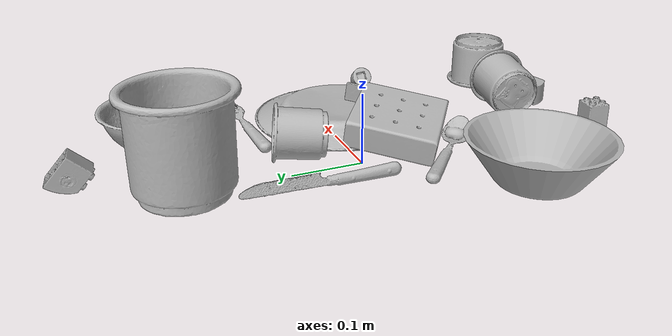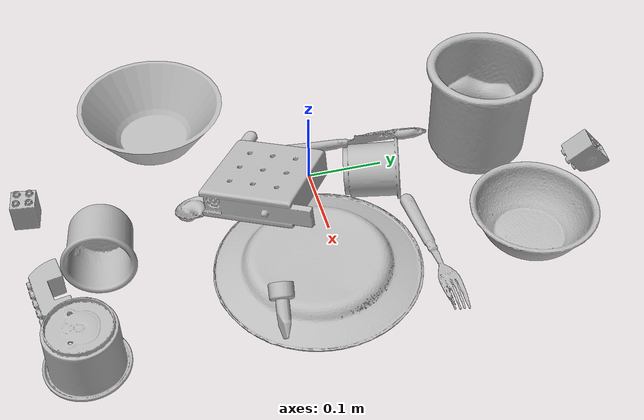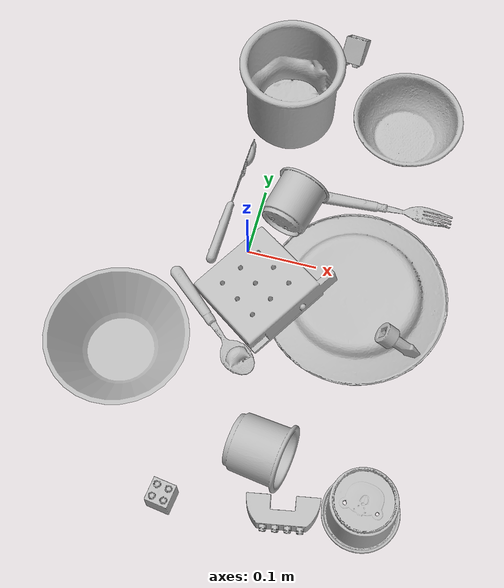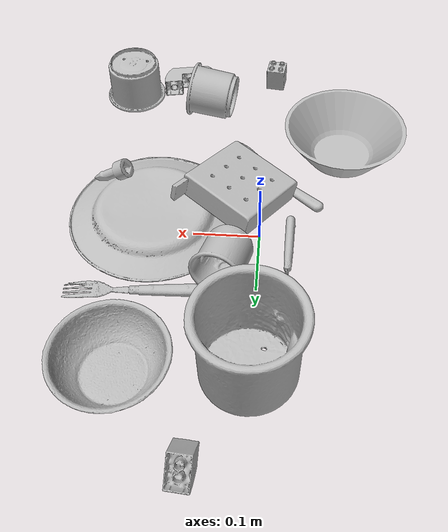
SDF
<sdf version="1.4">
  <world name="default">
    <light name="light1" type="point">
      <pose>0 0 1 0 0 0</pose>
      <diffuse>3 3 3 1</diffuse>
      <specular>3 3 3 1</specular>
    </light>
    <light name="light2" type="point">
      <pose>0 0.5 2 0 0 0</pose>
      <diffuse>1 1 1 1</diffuse>
      <specular>1 1 1 1</specular>
    </light>
    <light name="light3" type="point">
      <pose>0 0.5 2 0 0 0</pose>
      <diffuse>3 3 3 1</diffuse>
      <specular>3 3 3 1</specular>
    </light>
    <scene>
      <ambient>0.7 0.7 0.7</ambient>
    </scene>
    <model name="plate1">
      <link name="link_plate1">
        <collision name="default">
          <geometry>
            <mesh>
              <uri>model://plate/collision_meshes/collision.obj</uri>
              <scale>1.0 1.0 1.0</scale>
            </mesh>
          </geometry>
          <surface>
            <friction>
              <ode>
                <mu>0.5</mu>
                <mu2>0.5</mu2>
              </ode>
            </friction>
          <contact>
        <ode>
            <max_vel>0</max_vel>
            <min_depth>0.0001</min_depth>
            <kp>1e8</kp>
        </ode>
    </contact></surface>
        </collision>
        <visual name="default">
          <geometry>
            <mesh>
              <uri>model://plate/visual_meshes/visual.dae</uri>
              <scale>1.0 1.0 1.0</scale>
            </mesh>
          </geometry>
        </visual>
        <inertial>
          <mass>0.17760059237480164</mass>
          <pose>-0.0006044625188224018 0.0002782586379908025 -0.0010561981471255422 0.0022187804018266454 -0.0032254852757079067 0.45261158451631034</pose>
          <inertia>
            <ixx>0.0008308187</ixx>
            <iyy>0.0008228725</iyy>
            <izz>0.0016249575</izz>
            <ixy>0</ixy>
            <ixz>0</ixz>
            <iyz>0</iyz>
          </inertia>
        </inertial>
      </link>
      <pose>0.16452111303806305 -0.03132164478302002 0.013927219435572624 3.1259856221602 -0.007385592271406682 2.5037530969604975</pose>
    </model>
    <model name="cup1">
      <link name="link_cup1">
        <collision name="default">
          <geometry>
            <mesh>
              <uri>model://e_cups/collision_meshes/collision.obj</uri>
              <scale>2.0 2.0 2.0</scale>
            </mesh>
          </geometry>
          <surface>
            <friction>
              <ode>
                <mu>0.5</mu>
                <mu2>0.5</mu2>
              </ode>
            </friction>
          <contact>
        <ode>
            <max_vel>0</max_vel>
            <min_depth>0.0001</min_depth>
            <kp>1e8</kp>
        </ode>
    </contact></surface>
        </collision>
        <visual name="default">
          <geometry>
            <mesh>
              <uri>model://e_cups/visual_meshes/visual.dae</uri>
              <scale>2.0 2.0 2.0</scale>
            </mesh>
          </geometry>
        </visual>
        <inertial>
          <mass>0.744063675403595</mass>
          <pose>0.002271148143336177 0.005759569350630045 -0.007765938527882099 0.6952380949131286 0.08767384491187986 -0.5235246841726229</pose>
          <inertia>
            <ixx>0.0026243117</ixx>
            <iyy>0.0027427815</iyy>
            <izz>0.0025091455</izz>
            <ixy>0</ixy>
            <ixz>0</ixz>
            <iyz>0</iyz>
          </inertia>
        </inertial>
      </link>
      <pose>0.0028104721568524837 0.23631134629249573 0.07120022922754288 -6.990888139079443e-06 4.362012337239114e-06 0.9962745160491979</pose>
    </model>
    <model name="silverware1">
      <link name="link_silverware1">
        <collision name="default">
          <geometry>
            <mesh>
              <uri>model://knife/collision_meshes/collision.obj</uri>
              <scale>1.0 1.0 1.0</scale>
            </mesh>
          </geometry>
          <surface>
            <friction>
              <ode>
                <mu>0.5</mu>
                <mu2>0.5</mu2>
              </ode>
            </friction>
          <contact>
        <ode>
            <max_vel>0</max_vel>
            <min_depth>0.0001</min_depth>
            <kp>1e8</kp>
        </ode>
    </contact></surface>
        </collision>
        <visual name="default">
          <geometry>
            <mesh>
              <uri>model://knife/visual_meshes/visual.dae</uri>
              <scale>1.0 1.0 1.0</scale>
            </mesh>
          </geometry>
        </visual>
        <inertial>
          <mass>0.01882243901491165</mass>
          <pose>-0.02378525212407112 0.001527512213215232 5.062019408796914e-05 0.07305335090357784 0.017248422780830937 -0.007409828138098005</pose>
          <inertia>
            <ixx>5.342572e-07</ixx>
            <iyy>7.231275e-05</iyy>
            <izz>7.248483e-05</izz>
            <ixy>0</ixy>
            <ixz>0</ixz>
            <iyz>0</iyz>
          </inertia>
        </inertial>
      </link>
      <pose>-0.04236140102148056 0.07279502600431442 0.009879295714199543 -1.4462649126747142 0.004169503201888437 1.5329021112931427</pose>
    </model>
    <model name="silverware2">
      <link name="link_silverware2">
        <collision name="default">
          <geometry>
            <mesh>
              <uri>model://fork/collision_meshes/collision.obj</uri>
              <scale>1.0 1.0 1.0</scale>
            </mesh>
          </geometry>
          <surface>
            <friction>
              <ode>
                <mu>0.5</mu>
                <mu2>0.5</mu2>
              </ode>
            </friction>
          <contact>
        <ode>
            <max_vel>0</max_vel>
            <min_depth>0.0001</min_depth>
            <kp>1e8</kp>
        </ode>
    </contact></surface>
        </collision>
        <visual name="default">
          <geometry>
            <mesh>
              <uri>model://fork/visual_meshes/visual.dae</uri>
              <scale>1.0 1.0 1.0</scale>
            </mesh>
          </geometry>
        </visual>
        <inertial>
          <mass>0.02216319739818573</mass>
          <pose>-0.029570037499070168 0.0004658822435885668 0.0003218860365450382 -0.01355085274048469 -0.010977831838055618 0.014453900749429992</pose>
          <inertia>
            <ixx>7.769453e-07</ixx>
            <iyy>5.7861733e-05</iyy>
            <izz>5.8209254e-05</izz>
            <ixy>0</ixy>
            <ixz>0</ixz>
            <iyz>0</iyz>
          </inertia>
        </inertial>
      </link>
      <pose>0.17514243721961975 0.11551462113857269 0.00781281478703022 3.0675558805328857 -0.005723215373697758 0.05723825514674186</pose>
    </model>
    <model name="silverware3">
      <link name="link_silverware3">
        <collision name="default">
          <geometry>
            <mesh>
              <uri>model://spoon/collision_meshes/collision.obj</uri>
              <scale>1.0 1.0 1.0</scale>
            </mesh>
          </geometry>
          <surface>
            <friction>
              <ode>
                <mu>0.5</mu>
                <mu2>0.5</mu2>
              </ode>
            </friction>
          <contact>
        <ode>
            <max_vel>0</max_vel>
            <min_depth>0.0001</min_depth>
            <kp>1e8</kp>
        </ode>
    </contact></surface>
        </collision>
        <visual name="default">
          <geometry>
            <mesh>
              <uri>model://spoon/visual_meshes/visual.dae</uri>
              <scale>1.0 1.0 1.0</scale>
            </mesh>
          </geometry>
        </visual>
        <inertial>
          <mass>0.0369713120162487</mass>
          <pose>-0.005526314955204725 -0.001603417214937508 -0.0007271651993505657 0.03521850370393077 -0.03906584809093457 0.006150612862082015</pose>
          <inertia>
            <ixx>2.0564048e-06</ixx>
            <iyy>0.00014067463</iyy>
            <izz>0.00014168874</izz>
            <ixy>0</ixy>
            <ixz>0</ixz>
            <iyz>0</iyz>
          </inertia>
        </inertial>
      </link>
      <pose>-0.018910512328147888 -0.118255116045475 0.00838526338338852 0.006729237300234893 0.026892991549257884 -0.7216081080333966</pose>
    </model>
    <model name="cup3">
      <link name="link_cup3">
        <collision name="default">
          <geometry>
            <mesh>
              <uri>model://h_cups/collision_meshes/collision.obj</uri>
              <scale>1.0 1.0 1.0</scale>
            </mesh>
          </geometry>
          <surface>
            <friction>
              <ode>
                <mu>0.5</mu>
                <mu2>0.5</mu2>
              </ode>
            </friction>
          <contact>
        <ode>
            <max_vel>0</max_vel>
            <min_depth>0.0001</min_depth>
            <kp>1e8</kp>
        </ode>
    </contact></surface>
        </collision>
        <visual name="default">
          <geometry>
            <mesh>
              <uri>model://h_cups/visual_meshes/visual.dae</uri>
              <scale>1.0 1.0 1.0</scale>
            </mesh>
          </geometry>
        </visual>
        <inertial>
          <mass>0.07650958746671677</mass>
          <pose>-2.7029362172470428e-05 0.0002301867789356038 -0.0018405390437692404 -0.02436239906192228 0.06545228304852578 0.1288505673262376</pose>
          <inertia>
            <ixx>9.880857e-05</ixx>
            <iyy>9.7629454e-05</iyy>
            <izz>0.0001036231</izz>
            <ixy>0</ixy>
            <ixz>0</ixz>
            <iyz>0</iyz>
          </inertia>
        </inertial>
      </link>
      <pose>0.0941319391131401 -0.28751370310783386 0.04216717928647995 1.393915852392832 0.9847153481837199 1.270597587894145</pose>
    </model>
    <model name="cup4">
      <link name="link_cup4">
        <collision name="default">
          <geometry>
            <mesh>
              <uri>model://f_cups/collision_meshes/collision.obj</uri>
              <scale>1.0 1.0 1.0</scale>
            </mesh>
          </geometry>
          <surface>
            <friction>
              <ode>
                <mu>0.5</mu>
                <mu2>0.5</mu2>
              </ode>
            </friction>
          <contact>
        <ode>
            <max_vel>0</max_vel>
            <min_depth>0.0001</min_depth>
            <kp>1e8</kp>
        </ode>
    </contact></surface>
        </collision>
        <visual name="default">
          <geometry>
            <mesh>
              <uri>model://f_cups/visual_meshes/visual.dae</uri>
              <scale>1.0 1.0 1.0</scale>
            </mesh>
          </geometry>
        </visual>
        <inertial>
          <mass>0.06643713265657425</mass>
          <pose>-0.003171468386426568 -0.0006240070797502995 -0.003655537962913513 0.7862285241405351 -0.26079358215919657 -0.18237309734404591</pose>
          <inertia>
            <ixx>6.2452695e-05</ixx>
            <iyy>6.551358e-05</iyy>
            <izz>6.820148e-05</izz>
            <ixy>0</ixy>
            <ixz>0</ixz>
            <iyz>0</iyz>
          </inertia>
        </inertial>
      </link>
      <pose>0.04692986607551575 0.07268887013196945 0.037166036665439606 1.4766542176384285 0.28734980163864854 2.8429583940200653</pose>
    </model>
    <model name="cup5">
      <link name="link_cup5">
        <collision name="default">
          <geometry>
            <mesh>
              <uri>model://j_cups/collision_meshes/collision.obj</uri>
              <scale>1.0 1.0 1.0</scale>
            </mesh>
          </geometry>
          <surface>
            <friction>
              <ode>
                <mu>0.5</mu>
                <mu2>0.5</mu2>
              </ode>
            </friction>
          <contact>
        <ode>
            <max_vel>0</max_vel>
            <min_depth>0.0001</min_depth>
            <kp>1e8</kp>
        </ode>
    </contact></surface>
        </collision>
        <visual name="default">
          <geometry>
            <mesh>
              <uri>model://j_cups/visual_meshes/visual.dae</uri>
              <scale>1.0 1.0 1.0</scale>
            </mesh>
          </geometry>
        </visual>
        <inertial>
          <mass>0.12178023159503937</mass>
          <pose>0.0006164865335449576 0.000539897009730339 -0.001347901183180511 0.03030406613159603 0.03757978252187804 0.4386981755119238</pose>
          <inertia>
            <ixx>0.0001788119</ixx>
            <iyy>0.00018067128</iyy>
            <izz>0.00020613305</izz>
            <ixy>0</ixy>
            <ixz>0</ixz>
            <iyz>0</iyz>
          </inertia>
        </inertial>
      </link>
      <pose>0.23817569017410278 -0.3250163793563843 0.037997763603925705 -3.1398532262860077 0.006370778674733322 2.8643332687110803</pose>
    </model>
    <model name="bowl1">
      <link name="link_bowl1">
        <collision name="default">
          <geometry>
            <mesh>
              <uri>model://bowl/collision_meshes/collision.obj</uri>
              <scale>1.0 1.0 1.0</scale>
            </mesh>
          </geometry>
          <surface>
            <friction>
              <ode>
                <mu>0.5</mu>
                <mu2>0.5</mu2>
              </ode>
            </friction>
          <contact>
        <ode>
            <max_vel>0</max_vel>
            <min_depth>0.0001</min_depth>
            <kp>1e8</kp>
        </ode>
    </contact></surface>
        </collision>
        <visual name="default">
          <geometry>
            <mesh>
              <uri>model://bowl/visual_meshes/visual.dae</uri>
              <scale>1.0 1.0 1.0</scale>
            </mesh>
          </geometry>
        </visual>
        <inertial>
          <mass>0.07745425403118134</mass>
          <pose>0.0002044533030129969 -0.001030205748975277 -0.0008042643312364817 -0.015764104528614948 0.014546761750555465 0.7140386532433999</pose>
          <inertia>
            <ixx>0.00017791858</ixx>
            <iyy>0.0001739432</iyy>
            <izz>0.00029932024</izz>
            <ixy>0</ixy>
            <ixz>0</ixz>
            <iyz>0</iyz>
          </inertia>
        </inertial>
      </link>
      <pose>0.17777982354164124 0.24466177821159363 0.027779987081885338 -1.964058732811361e-08 5.137075741466583e-08 0.8763575338532287</pose>
    </model>
    <model name="bowl2">
      <link name="link_bowl2">
        <collision name="default">
          <geometry>
            <mesh>
              <uri>model://bowl_a/collision_meshes/collision.obj</uri>
              <scale>1.0 1.0 1.0</scale>
            </mesh>
          </geometry>
          <surface>
            <friction>
              <ode>
                <mu>0.5</mu>
                <mu2>0.5</mu2>
              </ode>
            </friction>
          <contact>
        <ode>
            <max_vel>0</max_vel>
            <min_depth>0.0001</min_depth>
            <kp>1e8</kp>
        </ode>
    </contact></surface>
        </collision>
        <visual name="default">
          <geometry>
            <mesh>
              <uri>model://bowl_a/visual_meshes/visual.dae</uri>
              <scale>1.0 1.0 1.0</scale>
            </mesh>
          </geometry>
        </visual>
        <inertial>
          <mass>0.3088552951812744</mass>
          <pose>0.00027867488097399473 4.730938235297799e-05 -0.0013765291078016162 -0.0009805400563029818 -0.0010938222386440513 -0.19123616665791646</pose>
          <inertia>
            <ixx>0.0008793254</ixx>
            <iyy>0.00088472397</iyy>
            <izz>0.0015639137</izz>
            <ixy>0</ixy>
            <ixz>0</ixz>
            <iyz>0</iyz>
          </inertia>
        </inertial>
      </link>
      <pose>-0.12968361377716064 -0.18972307443618774 0.030383015051484108 1.52456250612728e-08 3.9611824138034906e-09 2.1556639745787476</pose>
    </model>
    <model name="toy1">
      <link name="link_toy1">
        <collision name="default">
          <geometry>
            <mesh>
              <uri>model://nine_hole_peg_test/collision_meshes/collision.obj</uri>
              <scale>1.0 1.0 1.0</scale>
            </mesh>
          </geometry>
          <surface>
            <friction>
              <ode>
                <mu>0.5</mu>
                <mu2>0.5</mu2>
              </ode>
            </friction>
          <contact>
        <ode>
            <max_vel>0</max_vel>
            <min_depth>0.0001</min_depth>
            <kp>1e8</kp>
        </ode>
    </contact></surface>
        </collision>
        <visual name="default">
          <geometry>
            <mesh>
              <uri>model://nine_hole_peg_test/visual_meshes/visual.dae</uri>
              <scale>1.0 1.0 1.0</scale>
            </mesh>
          </geometry>
        </visual>
        <inertial>
          <mass>0.6997236609458923</mass>
          <pose>-0.004617386497557163 -0.009647613391280174 2.6460686058271676e-05 -0.0014666798725883532 0.0007194177661592421 -0.634241755630697</pose>
          <inertia>
            <ixx>0.001094133</ixx>
            <iyy>0.0010215805</iyy>
            <izz>0.0019172435</izz>
            <ixy>0</ixy>
            <ixz>0</ixz>
            <iyz>0</iyz>
          </inertia>
        </inertial>
      </link>
      <pose>0.043811067938804626 -0.06255742907524109 0.0388847254216671 0.15825043652858345 -0.12463776527337583 -0.6218796598373805</pose>
    </model>
    <model name="toy2">
      <link name="link_toy2">
        <collision name="default">
          <geometry>
            <mesh>
              <uri>model://b_lego_duplo/collision_meshes/collision.obj</uri>
              <scale>1.0 1.0 1.0</scale>
            </mesh>
          </geometry>
          <surface>
            <friction>
              <ode>
                <mu>0.5</mu>
                <mu2>0.5</mu2>
              </ode>
            </friction>
          <contact>
        <ode>
            <max_vel>0</max_vel>
            <min_depth>0.0001</min_depth>
            <kp>1e8</kp>
        </ode>
    </contact></surface>
        </collision>
        <visual name="default">
          <geometry>
            <mesh>
              <uri>model://b_lego_duplo/visual_meshes/visual.dae</uri>
              <scale>1.0 1.0 1.0</scale>
            </mesh>
          </geometry>
        </visual>
        <inertial>
          <mass>0.036269694566726685</mass>
          <pose>-0.00011053054186049849 -9.152130587608553e-06 0.0019294297089800239 -0.03749458994465856 -0.026354447033388347 0.4518895757464325</pose>
          <inertia>
            <ixx>7.4228647e-06</ixx>
            <iyy>7.4727645e-06</iyy>
            <izz>6.6135317e-06</izz>
            <ixy>0</ixy>
            <ixz>0</ixz>
            <iyz>0</iyz>
          </inertia>
        </inertial>
      </link>
      <pose>-0.014213723130524158 -0.3727515935897827 0.021815000101923943 -4.3499777157295154e-07 7.351914570250022e-07 3.002280002511748</pose>
    </model>
    <model name="toy3">
      <link name="link_toy3">
        <collision name="default">
          <geometry>
            <mesh>
              <uri>model://e_lego_duplo/collision_meshes/collision.obj</uri>
              <scale>1.0 1.0 1.0</scale>
            </mesh>
          </geometry>
          <surface>
            <friction>
              <ode>
                <mu>0.5</mu>
                <mu2>0.5</mu2>
              </ode>
            </friction>
          <contact>
        <ode>
            <max_vel>0</max_vel>
            <min_depth>0.0001</min_depth>
            <kp>1e8</kp>
        </ode>
    </contact></surface>
        </collision>
        <visual name="default">
          <geometry>
            <mesh>
              <uri>model://e_lego_duplo/visual_meshes/visual.dae</uri>
              <scale>1.0 1.0 1.0</scale>
            </mesh>
          </geometry>
        </visual>
        <inertial>
          <mass>0.09994293004274368</mass>
          <pose>0.0003256055060774088 0.00023485402925871313 0.0019521453650668263 -0.0225675226805428 -6.825163911406593e-05 -0.00762515763197677</pose>
          <inertia>
            <ixx>2.08414e-05</ixx>
            <iyy>8.553845e-05</iyy>
            <izz>8.329725e-05</izz>
            <ixy>0</ixy>
            <ixz>0</ixz>
            <iyz>0</iyz>
          </inertia>
        </inertial>
      </link>
      <pose>0.14191719889640808 -0.3554997742176056 0.016279397532343864 1.5786383708086411 -0.0047695034107955465 0.17953186325064482</pose>
    </model>
    <model name="toy4">
      <link name="link_toy4">
        <collision name="default">
          <geometry>
            <mesh>
              <uri>model://d_lego_duplo/collision_meshes/collision.obj</uri>
              <scale>1.0 1.0 1.0</scale>
            </mesh>
          </geometry>
          <surface>
            <friction>
              <ode>
                <mu>0.5</mu>
                <mu2>0.5</mu2>
              </ode>
            </friction>
          <contact>
        <ode>
            <max_vel>0</max_vel>
            <min_depth>0.0001</min_depth>
            <kp>1e8</kp>
        </ode>
    </contact></surface>
        </collision>
        <visual name="default">
          <geometry>
            <mesh>
              <uri>model://d_lego_duplo/visual_meshes/visual.dae</uri>
              <scale>1.0 1.0 1.0</scale>
            </mesh>
          </geometry>
        </visual>
        <inertial>
          <mass>0.04219998046755791</mass>
          <pose>0.0028305635787546635 0.00016366135969292372 0.0008589813369326293 0.08010947906167593 -0.38355230128712514 0.001029700717632254</pose>
          <inertia>
            <ixx>8.169298e-06</ixx>
            <iyy>1.1594444e-05</iyy>
            <izz>1.1181217e-05</izz>
            <ixy>0</ixy>
            <ixz>0</ixz>
            <iyz>0</iyz>
          </inertia>
        </inertial>
      </link>
      <pose>0.07310664653778076 0.3661925792694092 0.017907587811350822 -3.137676595847939 -0.8554368599875719 -1.6646861844944851</pose>
    </model>
    <model name="toy5">
      <link name="link_toy5">
        <collision name="default">
          <geometry>
            <mesh>
              <uri>model://e_toy_airplane/collision_meshes/collision.obj</uri>
              <scale>1.0 1.0 1.0</scale>
            </mesh>
          </geometry>
          <surface>
            <friction>
              <ode>
                <mu>0.5</mu>
                <mu2>0.5</mu2>
              </ode>
            </friction>
          <contact>
        <ode>
            <max_vel>0</max_vel>
            <min_depth>0.0001</min_depth>
            <kp>1e8</kp>
        </ode>
    </contact></surface>
        </collision>
        <visual name="default">
          <geometry>
            <mesh>
              <uri>model://e_toy_airplane/visual_meshes/visual.dae</uri>
              <scale>1.0 1.0 1.0</scale>
            </mesh>
          </geometry>
        </visual>
        <inertial>
          <mass>0.01083444245159626</mass>
          <pose>0.00011740464105969295 -2.2482989152194932e-05 -0.011187201365828514 0.005518500665833105 0.009228299677984822 0.1504140594290799</pose>
          <inertia>
            <ixx>3.3067965e-06</ixx>
            <iyy>3.2729695e-06</iyy>
            <izz>9.938221e-07</izz>
            <ixy>0</ixy>
            <ixz>0</ixz>
            <iyz>0</iyz>
          </inertia>
        </inertial>
      </link>
      <pose>0.2393111139535904 -0.09396801143884659 0.027310175821185112 2.2079214389753985 0.4451088232344385 1.7425344090330235</pose>
    </model>
  <physics type="ode">
      <max_contacts>50</max_contacts>
      <ode>
        <solver>
          <type>quick</type>
          <iters>75</iters>
        </solver>
        <constraints>
          <contact_max_correcting_vel>0</contact_max_correcting_vel>
          <contact_surface_layer>0</contact_surface_layer>
        </constraints>
      </ode>
    </physics></world>
</sdf>
